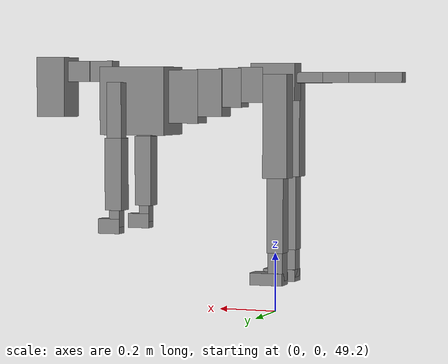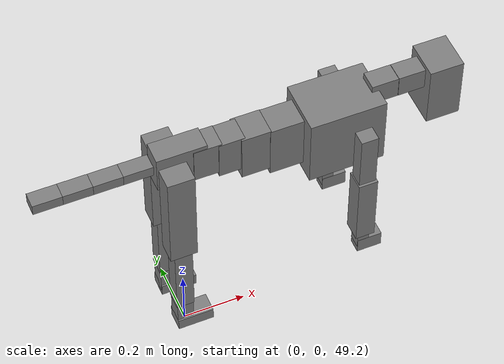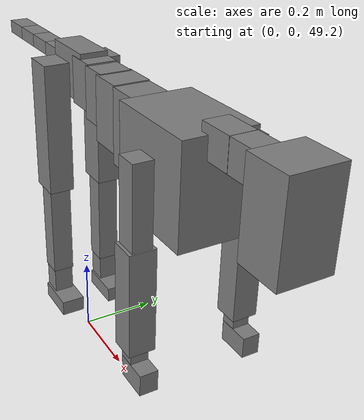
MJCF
<mujoco model="dog">

    <default>
        <joint armature="0.02" stiffness="1" damping="0.2" limited="true"/>
        <geom condim="3" friction="1 0.05 0.05" margin="0.01"/>
        <motor ctrllimited="true" ctrlrange="-1.0 1.0" forcelimited="true" gear="50"/>
    </default>

    <compiler inertiafromgeom="true" angle="radian"/>

    <option timestep="0.016" iterations="50" tolerance="1e-10" solver="Newton" jacobian="dense" cone="pyramidal"/>

    <size nconmax="20000" njmax="60000" nstack="5000000"/>
    <visual>
        <map force="0.1" zfar="30"/>
        <rgba haze="0.15 0.25 0.35 1"/>
        <quality shadowsize="2048"/>
        <global offwidth="800" offheight="800"/>
    </visual>

    <asset>
        <texture type="skybox" builtin="gradient" rgb1="0.3 0.5 0.7" rgb2="0 0 0" width="512" height="512"/>
        <texture name="texplane" type="2d" builtin="checker" rgb1=".2 .3 .4" rgb2=".1 0.15 0.2" width="512" height="512"
                 mark="cross" markrgb=".8 .8 .8"/>
        <texture name="texgeom" type="cube" builtin="flat" mark="cross" width="127" height="1278" rgb1="0.8 0.6 0.4"
                 rgb2="0.8 0.6 0.4" markrgb="1 1 1" random="0.01"/>

        <material name="matplane" reflectance="0.3" texture="texplane" texrepeat="1 1" texuniform="true"/>
        <material name="matgeom" texture="texgeom" texuniform="true" rgba="0.8 0.6 .4 1"/>
    </asset>

    <worldbody>
        <geom name="floor" pos="0 0 0" size="0 0 .25" type="plane" material="matplane" condim="3"/>

        <light directional="false" diffuse=".2 .2 .2" specular="0 0 0" pos="0 0 5" dir="0 0 -1" castshadow="false"/>
        <light mode="targetbodycom" target="torso" directional="false" diffuse=".8 .8 .8" specular="0.3 0.3 0.3"
               pos="0 0 4.0" dir="0 0 -1"/>

        <body name="root" pos="0 0 50">
            <freejoint name="root_1"/>
            <geom type="box" pos="0 0 -0.02" size="0.0774  0.0358  0.063" density="2030"/>

            <body name="spine1" pos="0.054 0 0">
                <joint name="spine1_y" axis="0 1 0" range="0 0.7" limited="true"/>
                <geom type="box" pos="0.02375 0 -0.03" size="0.04375  0.0375  0.05985" density="2030"/>

                <body name="spine2" pos="0.0612 0 0">
                    <joint name="spine2_y" axis="0 1 0" range="-0.15 0.15" limited="true"/>
                    <geom type="box" pos="0.03555  0  -0.04" size="0.04055  0.039  0.06615" density="2030"/>

                    <body name="spine3" pos="0.0730 0 0">
                        <joint name="spine3_y" axis="0 1 0" range="-0.15 0.15" limited="true"/>
                        <geom type="box" pos="0.03555  0  -0.057" size="0.04555  0.0445  0.081" density="2030"/>

                        <body name="spine4" pos="0.0780 0 0">
                            <joint name="spine4_y" axis="0 1 0" range="-0.15 0.15" limited="true"/>
                            <geom type="box" pos="0.05265  0  -0.07" size="0.05265  0.045  0.09135" density="2030"/>

                            <body name="torso" pos="0.1082 0 0">
                                <joint name="torso_y" axis="0 1 0" range="-0.15 0.15" limited="true"/>
                                <geom type="box" pos="0.11925  0  -0.085" size="0.11925  0.085  0.11745"
                                      density="2030"/>

                                <body name="neck1" pos="0.2160  0   0.0180">
                                    <joint name="neck1_y" axis="0 1 0" range="-1.2  -1" limited="true"/>
                                    <geom type="box" pos="0.0423  0  0" size="0.0423  0.03  0.036" density="2325"/>

                                    <body name="neck2" pos="0.0853  0  0">
                                        <joint name="neck2_y" axis="0 1 0" range="0.1  0" limited="true"/>
                                        <geom type="box" pos="0.0423  0  0" size="0.0423  0.03  0.036" density="2325"/>

                                        <body name="head" pos="0.0853  0  0">
                                            <joint name="head_y" axis="0 1 0" range="-0.3  -0.2" limited="true"/>
                                            <geom type="box" pos="0.0531  0  -0.055" size="0.0531  0.06  0.1044"
                                                  density="4030"/>

                                        </body>
                                    </body>
                                </body>

                                <body name="front_shoulder" pos="0.156  0   -0.0480">
                                    <joint name="front_shoulder_y" axis="0 1 0" range="-1 1.5" limited="true"/>
                                    <geom type="box" pos="0 0.13 -0.0817" size="0.0268  0.0229  0.1083" density="1158"/>
                                    <geom type="box" pos="0 -0.13 -0.0817" size="0.0268  0.0229  0.1083"
                                          density="1158"/>

                                    <body name="front_elbow" pos="0  0  -0.1634">
                                        <joint name="front_elbow_y" axis="0 1 0" range="-2 0" limited="true"/>
                                        <geom type="box" pos="0 0.13 -0.1232" size="0.0303  0.0310  0.1232"
                                              density="1081"/>
                                        <geom type="box" pos="0 -0.13 -0.1232" size="0.0303  0.0310  0.1232"
                                              density="1081"/>

                                        <body name="front_wrist" pos="0  0  -0.2464">
                                            <joint name="front_wrist_y" axis="0 1 0" range="-0.2 0" limited="true"/>
                                            <geom type="box" pos="0 0.13 -0.0225" size="0.0188  0.0209  0.0356"
                                                  density="1664"/>
                                            <geom type="box" pos="0 -0.13 -0.0225" size="0.0188  0.0209  0.0356"
                                                  density="1664"/>

                                            <body name="front_finger_end" pos="0  0  -0.0450">
                                                <joint name="front_finger_y" axis="0 1 0" range="-0.4 1"
                                                       limited="true"/>
                                                <geom type="box" pos="0.0214  0.13  -0.0105"
                                                      size="0.0392  0.0214  0.0255" density="1515"/>
                                                <geom type="box" pos="0.0214  -0.13  -0.0105"
                                                      size="0.0392  0.0214  0.0255" density="1515"/>

                                            </body>

                                        </body>
                                    </body>
                                </body>

                            </body>
                        </body>
                    </body>
                </body>
            </body>

            <body name="back_hip" pos="-0.03 0 -0.018">
                <joint name="back_hip_y" axis="0 1 0" range="-1.5 0.3" limited="true"/>
                <geom type="box" pos="0 0.07 -0.1503" size="0.0422  0.0331  0.1731" density="1154"/>
                <geom type="box" pos="0 -0.07 -0.1503" size="0.0422  0.0331  0.1731" density="1154"/>

                <body name="back_knee" pos="0  0  -0.3005">
                    <joint name="back_knee_y" axis="0 1 0" range="0 2.8" limited="true"/>
                    <geom type="box" pos="0 0.07 -0.1287" size="0.0282  0.0278  0.1443" density="1227"/>
                    <geom type="box" pos="0 -0.07 -0.1287" size="0.0282  0.0278  0.1443" density="1227"/>

                    <body name="back_ankle" pos="0  0  -0.2575">
                        <joint name="back_ankle_y" axis="0 1 0" range="-2.2 0" limited="true"/>
                        <geom type="box" pos="0 0.07 -0.0495" size="0.0258  0.0258  0.0607" density="1284"/>
                        <geom type="box" pos="0 -0.07 -0.0495" size="0.0258  0.0258  0.0607" density="1284"/>

                        <body name="back_toe_end" pos="0  0  -0.0989">
                            <joint name="back_toe_y" axis="0 1 0" range="-0.4 1" limited="true"/>
                            <geom type="box" pos="0.0310  0.07  -0.0053" size="0.0568  0.0310  0.0203" density="1515"/>
                            <geom type="box" pos="0.0310  -0.07  -0.0053" size="0.0568  0.0310  0.0203" density="1515"/>

                        </body>
                    </body>
                </body>
            </body>

            <body name="tail1" pos="-0.074 0 -0.006">
                <joint name="tail1_y" axis="0 1 0" range="-0.2 0.2" limited="true"/>
                <geom type="box" pos="-0.0536  0  0" size="0.045  0.025  0.0175" density="1587"/>

                <body name="tail2" pos="-0.09 0 0">
                    <joint name="tail2_y" axis="0 1 0" range="-0.2 0.2" limited="true"/>
                    <geom type="box" pos="-0.0536  0  0" size="0.045  0.025  0.0175" density="1587"/>

                    <body name="tail3" pos="-0.09 0 0">
                        <joint name="tail3_y" axis="0 1 0" range="-0.2 0.2" limited="true"/>
                        <geom type="box" pos="-0.0536  0  0" size="0.045  0.025  0.0175" density="1587"/>

                        <body name="tail4" pos="-0.09 0 0">
                            <joint name="tail4_y" axis="0 1 0" range="-0.2 0.2" limited="true"/>
                            <geom type="box" pos="-0.0536  0  0" size="0.045  0.025  0.0175" density="1587"/>

                        </body>
                    </body>
                </body>
            </body>
        </body>
    </worldbody>

    <actuator>
        <motor joint="spine1_y" forcerange="-150 150     "/>
        <motor joint="spine2_y" forcerange="-150 150     "/>
        <motor joint="spine3_y" forcerange="-150 150     "/>
        <motor joint="spine4_y" forcerange="-150 150     "/>
        <motor joint="torso_y" forcerange="-150 150     "/>
        <motor joint="neck1_y" forcerange="-100 100       "/>
        <motor joint="neck2_y" forcerange="-100 100       "/>
        <motor joint="head_y" forcerange="-150 150       "/>
        <motor joint="front_shoulder_y" forcerange="-108.27 144.23"/>
        <motor joint="front_elbow_y" forcerange="-129.77 195.64"/>
        <motor joint="front_wrist_y" forcerange="-107.09 60.19"/>
        <motor joint="front_finger_y" forcerange="-41.74 32.17"/>
        <motor joint="back_hip_y" forcerange="-378.20 262.83"/>
        <motor joint="back_knee_y" forcerange="-285.84 319.01"/>
        <motor joint="back_angle_y" forcerange="-192.38 120.65"/>
        <motor joint="back_toe_y" forcerange="-68.90 98.86"/>
        <motor joint="tail1_y" forcerange="-50 50     "/>
        <motor joint="tail2_y" forcerange="-50 50     "/>
        <motor joint="tail3_y" forcerange="-50 50     "/>
        <motor joint="tail4_y" forcerange="-50 50     "/>
    </actuator>
</mujoco>
